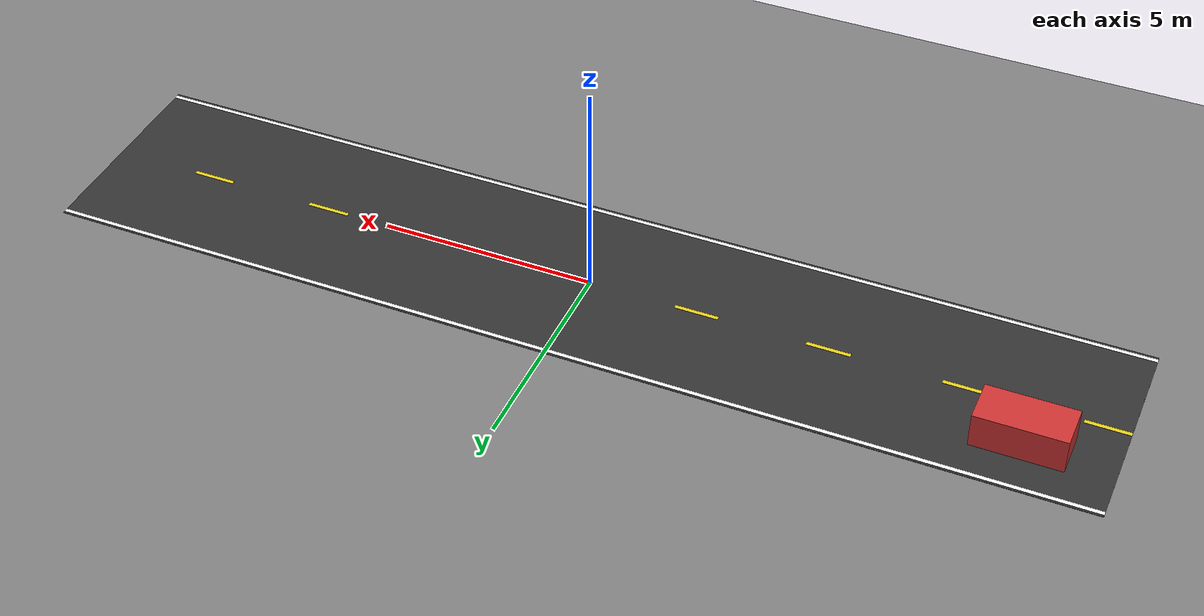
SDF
<?xml version="1.0" ?>
<sdf version="1.8">
  <world name="road_simple">

    <!-- Physics -->
    <physics name="1ms" type="ignored">
      <max_step_size>0.001</max_step_size>
      <real_time_factor>1.0</real_time_factor>
    </physics>

    <!-- Plugins -->
    <plugin filename="gz-sim-physics-system" name="gz::sim::systems::Physics"/>
    <plugin filename="gz-sim-user-commands-system" name="gz::sim::systems::UserCommands"/>
    <plugin filename="gz-sim-scene-broadcaster-system" name="gz::sim::systems::SceneBroadcaster"/>
    <plugin filename="gz-sim-sensors-system" name="gz::sim::systems::Sensors">
      <render_engine>ogre2</render_engine>
    </plugin>
    <plugin filename="gz-sim-imu-system" name="gz::sim::systems::Imu"/>
    <plugin filename="gz-sim-contact-system" name="gz::sim::systems::Contact"/>

    <!-- Lighting -->
    <light type="directional" name="sun">
      <cast_shadows>true</cast_shadows>
      <pose>0 0 10 0 0 0</pose>
      <diffuse>0.8 0.8 0.8 1</diffuse>
      <specular>0.2 0.2 0.2 1</specular>
      <direction>-0.5 0.1 -0.9</direction>
    </light>

    <!-- Ground Plane -->
    <model name="ground_plane">
      <static>true</static>
      <link name="link">
        <collision name="collision">
          <geometry>
            <plane>
              <normal>0 0 1</normal>
              <size>100 100</size>
            </plane>
          </geometry>
        </collision>
        <visual name="visual">
          <geometry>
            <plane>
              <normal>0 0 1</normal>
              <size>100 100</size>
            </plane>
          </geometry>
          <material>
            <ambient>0.5 0.5 0.5 1.0</ambient>
            <diffuse>0.5 0.5 0.5 1.0</diffuse>
          </material>
        </visual>
      </link>
    </model>

    <!-- Road: road_1 -->
    <model name="road_1">
      <static>true</static>
      <pose>0.0 0.0 0.001 0 0 0.0</pose>
      <link name="link">
        <visual name="road_surface">
          <geometry><box><size>24.0 5.0 0.01</size></box></geometry>
          <material>
            <ambient>0.2 0.2 0.2 1.0</ambient>
            <diffuse>0.2 0.2 0.2 1.0</diffuse>
          </material>
        </visual>
      </link>
    </model>

    <model name="road_1_center_line_0">
      <static>true</static>
      <pose>-11.5 0.0 0.002 0 0 0.0</pose>
      <link name="link">
        <visual name="visual">
          <geometry><box><size>1.0 0.1 0.01</size></box></geometry>
          <material>
            <ambient>0.9 0.8 0.1 1.0</ambient>
            <diffuse>0.9 0.8 0.1 1.0</diffuse>
          </material>
        </visual>
      </link>
    </model>

    <model name="road_1_center_line_1">
      <static>true</static>
      <pose>-8.5 0.0 0.002 0 0 0.0</pose>
      <link name="link">
        <visual name="visual">
          <geometry><box><size>1.0 0.1 0.01</size></box></geometry>
          <material>
            <ambient>0.9 0.8 0.1 1.0</ambient>
            <diffuse>0.9 0.8 0.1 1.0</diffuse>
          </material>
        </visual>
      </link>
    </model>

    <model name="road_1_center_line_2">
      <static>true</static>
      <pose>-5.5 0.0 0.002 0 0 0.0</pose>
      <link name="link">
        <visual name="visual">
          <geometry><box><size>1.0 0.1 0.01</size></box></geometry>
          <material>
            <ambient>0.9 0.8 0.1 1.0</ambient>
            <diffuse>0.9 0.8 0.1 1.0</diffuse>
          </material>
        </visual>
      </link>
    </model>

    <model name="road_1_center_line_3">
      <static>true</static>
      <pose>-2.5 0.0 0.002 0 0 0.0</pose>
      <link name="link">
        <visual name="visual">
          <geometry><box><size>1.0 0.1 0.01</size></box></geometry>
          <material>
            <ambient>0.9 0.8 0.1 1.0</ambient>
            <diffuse>0.9 0.8 0.1 1.0</diffuse>
          </material>
        </visual>
      </link>
    </model>

    <model name="road_1_center_line_4">
      <static>true</static>
      <pose>0.5 0.0 0.002 0 0 0.0</pose>
      <link name="link">
        <visual name="visual">
          <geometry><box><size>1.0 0.1 0.01</size></box></geometry>
          <material>
            <ambient>0.9 0.8 0.1 1.0</ambient>
            <diffuse>0.9 0.8 0.1 1.0</diffuse>
          </material>
        </visual>
      </link>
    </model>

    <model name="road_1_center_line_5">
      <static>true</static>
      <pose>3.5 0.0 0.002 0 0 0.0</pose>
      <link name="link">
        <visual name="visual">
          <geometry><box><size>1.0 0.1 0.01</size></box></geometry>
          <material>
            <ambient>0.9 0.8 0.1 1.0</ambient>
            <diffuse>0.9 0.8 0.1 1.0</diffuse>
          </material>
        </visual>
      </link>
    </model>

    <model name="road_1_center_line_6">
      <static>true</static>
      <pose>6.5 0.0 0.002 0 0 0.0</pose>
      <link name="link">
        <visual name="visual">
          <geometry><box><size>1.0 0.1 0.01</size></box></geometry>
          <material>
            <ambient>0.9 0.8 0.1 1.0</ambient>
            <diffuse>0.9 0.8 0.1 1.0</diffuse>
          </material>
        </visual>
      </link>
    </model>

    <model name="road_1_center_line_7">
      <static>true</static>
      <pose>9.5 0.0 0.002 0 0 0.0</pose>
      <link name="link">
        <visual name="visual">
          <geometry><box><size>1.0 0.1 0.01</size></box></geometry>
          <material>
            <ambient>0.9 0.8 0.1 1.0</ambient>
            <diffuse>0.9 0.8 0.1 1.0</diffuse>
          </material>
        </visual>
      </link>
    </model>

    <model name="road_1_edge_left">
      <static>true</static>
      <pose>1.4695761589768238e-16 2.4 0.002 0 0 0.0</pose>
      <link name="link">
        <visual name="visual">
          <geometry><box><size>24.0 0.1 0.01</size></box></geometry>
          <material>
            <ambient>0.95 0.95 0.95 1.0</ambient>
            <diffuse>0.95 0.95 0.95 1.0</diffuse>
          </material>
        </visual>
      </link>
    </model>

    <model name="road_1_edge_right">
      <static>true</static>
      <pose>-1.4695761589768238e-16 -2.4 0.002 0 0 0.0</pose>
      <link name="link">
        <visual name="visual">
          <geometry><box><size>24.0 0.1 0.01</size></box></geometry>
          <material>
            <ambient>0.95 0.95 0.95 1.0</ambient>
            <diffuse>0.95 0.95 0.95 1.0</diffuse>
          </material>
        </visual>
      </link>
    </model>

    <!-- Moving Car (TrajectoryFollower + 마찰 제거) -->
    <model name="moving_car">
      <static>false</static>
      <pose>-10 1.2 0.5 0 0 0</pose>
      <link name="chassis">
        <gravity>false</gravity>
        <collision name="collision">
          <geometry><box><size>2.0 1.0 0.8</size></box></geometry>
          <surface>
            <friction>
              <ode>
                <mu>0</mu>
                <mu2>0</mu2>
              </ode>
            </friction>
          </surface>
        </collision>
        <visual name="visual">
          <geometry><box><size>2.0 1.0 0.8</size></box></geometry>
          <material>
            <ambient>0.8 0.2 0.2 1.0</ambient>
            <diffuse>0.8 0.2 0.2 1.0</diffuse>
          </material>
        </visual>
        <inertial>
          <mass>1.0</mass>
          <inertia>
            <ixx>0.1</ixx><iyy>0.1</iyy><izz>0.1</izz>
          </inertia>
        </inertial>
      </link>
      <plugin filename="gz-sim-trajectory-follower-system" name="gz::sim::systems::TrajectoryFollower">
        <link_name>chassis</link_name>
        <loop>true</loop>
        <force>500</force>
        <torque>100</torque>
        <waypoint>
          <time>0</time>
          <pose>-10 1.2 0.5 0 0 0</pose>
        </waypoint>
        <waypoint>
          <time>25</time>
          <pose>10 1.2 0.5 0 0 0</pose>
        </waypoint>
        <waypoint>
          <time>50</time>
          <pose>-10 1.2 0.5 0 0 0</pose>
        </waypoint>
      </plugin>
    </model>

  </world>
</sdf>
